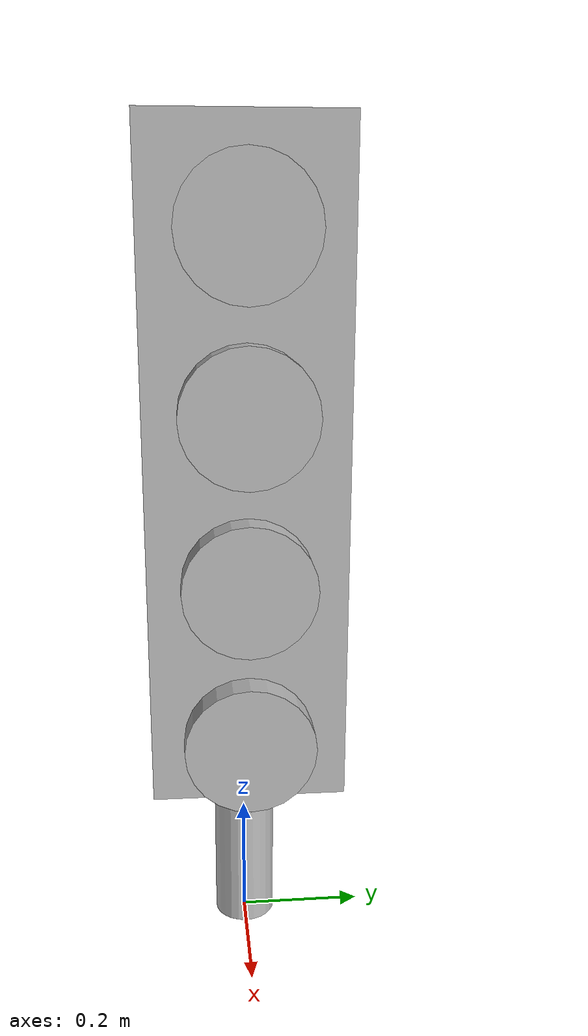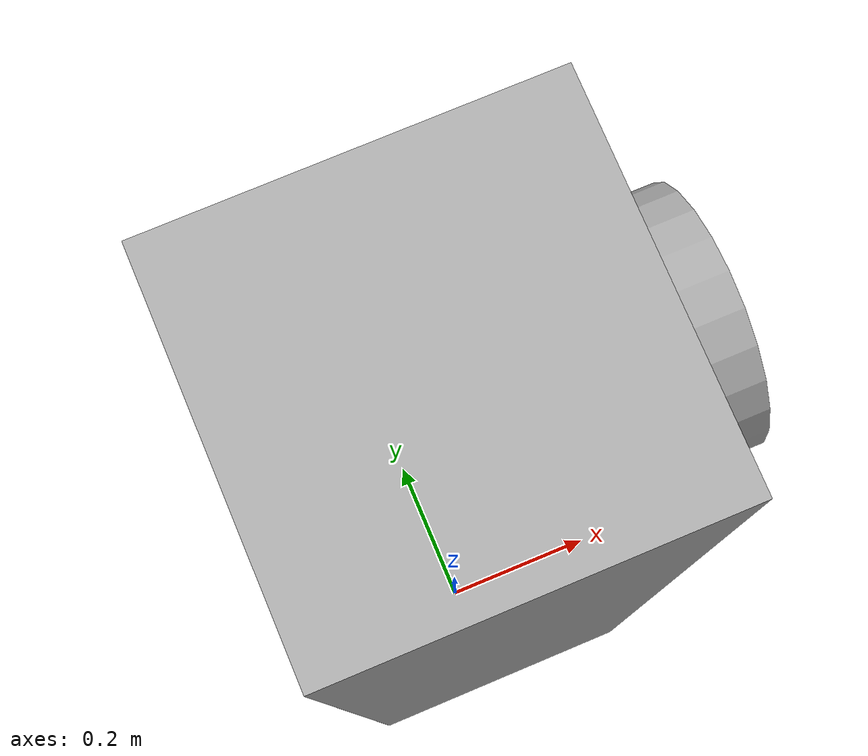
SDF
<?xml version="1.0"?>
<sdf version="1.5">

	<model name="traffic_light">
		<static>true</static>
		<link name="traffic_downer_bar">
			<pose>0 0 0.15 0 0 0</pose>
			<collision name="traffic_downer_bar_collision">
				<geometry>
					<cylinder>
						<radius>0.05</radius>
						<length>0.3</length>
					</cylinder>
				</geometry>
			</collision>
			<visual name="traffic_downer_bar_visual">
				<geometry>
					<cylinder>
						<radius>0.05</radius>
						<length>0.3</length>
					</cylinder>
				</geometry>
			</visual>
		</link>

		<link name="traffic_upper_bar">
			<pose>0 0 0.8 0 0 0</pose>
			<collision name="traffic_upper_bar_collision">
				<geometry>
					<box>
						<size>0.3 0.3 1.0</size>
					</box>
				</geometry>
			</collision>
			<visual name="traffic_upper_bar_visual">
				<geometry>
					<box>
						<size>0.3 0.3 1.0</size>
					</box>
				</geometry>
			</visual>
		</link>

		<!-- Define Pane Start -->
		<link name="red_pane">
			<pose>0.175 0 1.15 0 1.57 0</pose>
			<collision name="traffic_light_red_collision">
				<geometry>
					<cylinder>
						<radius>.1</radius>
						<length>.05</length>
					</cylinder>
				</geometry>
			</collision>
			<visual name="traffic_light_red_visual">
				<geometry>
					<cylinder>
						<radius>.1</radius>
						<length>.05</length>
					</cylinder>
				</geometry>
			</visual>
			<light type="spot" name="red">
				<pose>0 0 .6 0 0 0</pose>
				<diffuse>1 0 0 1</diffuse>
				<specular>1 1 1 1</specular>
				<attenuation>
					<range>0.6</range>
					<linear>0.01</linear>
					<constant>0.2</constant>
					<quadratic>0.0</quadratic>
				</attenuation>
				<direction>0 0 -1</direction>
				<spot>
					<inner_angle>0.1</inner_angle>
					<outer_angle>0.5</outer_angle>
					<falloff>1.2</falloff>
				</spot>
				<cast_shadows>false</cast_shadows>
			</light>
		</link>

		<link name="yellow_pane">
			<pose>0.175 0 0.9 0 1.57 0</pose>
			<collision name="traffic_light_yellow_collision">
				<geometry>
					<cylinder>
						<radius>.1</radius>
						<length>.05</length>
					</cylinder>
				</geometry>
			</collision>
			<visual name="traffic_light_yellow_visual">
				<geometry>
					<cylinder>
						<radius>.1</radius>
						<length>.05</length>
					</cylinder>
				</geometry>
			</visual>
			<!-- Yellow Spot Light -->
			<light type="spot" name="yellow">
				<pose>0 0 .6 0 0 0</pose>
				<diffuse>1 1 0 1</diffuse>
				<specular>.2 .2 .2 1</specular>
				<attenuation>
					<range>0.6</range>
					<linear>0.01</linear>
					<constant>0.2</constant>
					<quadratic>0.0</quadratic>
				</attenuation>
				<direction>0 0 -1</direction>
				<spot>
					<inner_angle>0.1</inner_angle>
					<outer_angle>0.5</outer_angle>
					<falloff>1.2</falloff>
				</spot>
				<cast_shadows>false</cast_shadows>
			</light>

		</link>
		<link name="green_pane">
			<pose>0.175 0 .65 0 1.57 0</pose>
			<collision name="traffic_light_green_collision">
				<geometry>
					<cylinder>
						<radius>.1</radius>
						<length>.05</length>
					</cylinder>
				</geometry>
			</collision>
			<visual name="traffic_light_green_visual">
				<geometry>
					<cylinder>
						<radius>.1</radius>
						<length>.05</length>
					</cylinder>
				</geometry>
			</visual>
			<!-- Green Spot Light -->
			<light type="spot" name="green">
				<pose>0 0 .6 0 0 0</pose>
				<diffuse>0 1 0 1</diffuse>
				<specular>.2 .2 .2 1</specular>
				<attenuation>
					<range>0.6</range>
					<linear>0.01</linear>
					<constant>0.2</constant>
					<quadratic>0.0</quadratic>
				</attenuation>
				<direction>0 0 -1</direction>
				<spot>
					<inner_angle>0.1</inner_angle>
					<outer_angle>0.5</outer_angle>
					<falloff>1.2</falloff>
				</spot>
				<cast_shadows>false</cast_shadows>
			</light>
		</link>
		<link name="arrow_pane">
			<pose>0.175 0 0.4 0 1.57 0</pose>
			<collision name="traffic_light_arrow_collision">
				<geometry>
					<cylinder>
						<radius>.1</radius>
						<length>.05</length>
					</cylinder>
				</geometry>
			</collision>
			<visual name="traffic_light_arrow_visual">
				<geometry>
					<cylinder>
						<radius>.1</radius>
						<length>.05</length>
					</cylinder>
				</geometry>
			</visual>
			<!-- Arrow Spot Light -->
			<light type="spot" name="arrow">
				<pose>0 0 .6 0 0 0</pose>
				<diffuse>0 1 0 1</diffuse>
				<specular>.2 .2 .2 1</specular>
				<attenuation>
					<range>0.6</range>
					<linear>0.01</linear>
					<constant>0.2</constant>
					<quadratic>0.0</quadratic>
				</attenuation>
				<direction>0 0 -1</direction>
				<spot>
					<inner_angle>0.1</inner_angle>
					<outer_angle>0.5</outer_angle>
					<falloff>1.2</falloff>
				</spot>
				<cast_shadows>false</cast_shadows>
			</light>
		</link>
		<!-- Define Pane End -->

		<!-- Define Joint Start -->

		<joint name="traffic_bar_upper_joint" type="fixed">
			<pose>0 0 0 0 0 0</pose>
			<parent>traffic_downer_bar</parent>
			<child>traffic_upper_bar</child>
			<axis>
				<xyz>0 0 0</xyz>
			</axis>
		</joint>
		<joint name="traffic_bar_red_pane_joint" type="fixed">
			<pose>0 0 0.2 0 0 0</pose>
			<parent>traffic_upper_bar</parent>
			<child>red_pane</child>
			<pose>0 0 0 0 0 0</pose>
			<axis>
				<xyz>0 0 0</xyz>
				<limit>
					<lower>0</lower>
					<upper>1.57</upper>
				</limit>
			</axis>
		</joint>
		<joint name="traffic_bar_yellow_pane_joint" type="fixed">
			<pose>0 0 0.2 0 0 0</pose>
			<parent>traffic_upper_bar</parent>
			<child>yellow_pane</child>
			<pose>0 0 0 0 0 0</pose>
			<axis>
				<xyz>0 0 0</xyz>
				<limit>
					<lower>0</lower>
					<upper>1.57</upper>
				</limit>
			</axis>
		</joint>
		<joint name="traffic_bar_green_pane_joint" type="fixed">
			<pose>0 0 0.2 0 0 0</pose>
			<parent>traffic_upper_bar</parent>
			<child>green_pane</child>
			<pose>0 0 0 0 0 0</pose>
			<axis>
				<xyz>0 0 0</xyz>
				<limit>
					<lower>0</lower>
					<upper>1.57</upper>
				</limit>
			</axis>
		</joint>
		<joint name="traffic_bar_arrow_pane_joint" type="fixed">
			<pose>0 0 0.2 0 0 0</pose>
			<parent>traffic_upper_bar</parent>
			<child>arrow_pane</child>
			<pose>0 0 0 0 0 0</pose>
			<axis>
				<xyz>0 0 0</xyz>
				<limit>
					<lower>0</lower>
					<upper>1.57</upper>
				</limit>
			</axis>
		</joint>
		<plugin name='light_control' filename='libFlashLightPlugin.so'>
			<light>
				<light>red_pane/red</light>
				<duration>0.5</duration>
				<interval>0.5</interval>
			</light>
		</plugin>
	</model>
</sdf>
